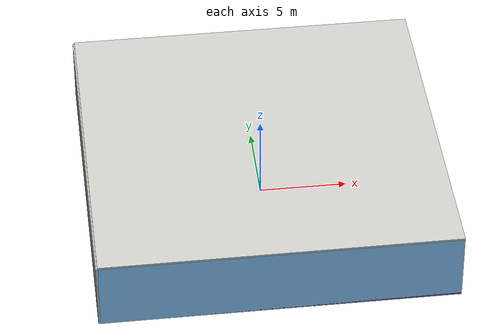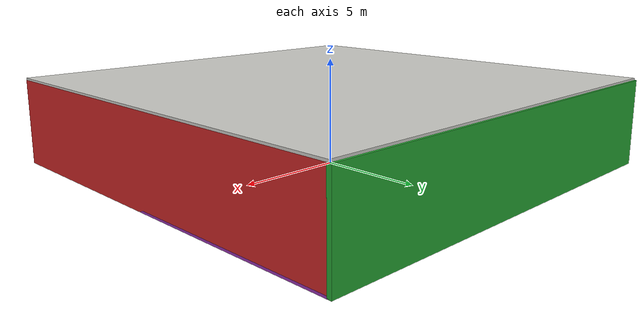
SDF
<sdf version="1.4">
 <world name="default">
  <physics type="ode">
   <max_step_size>0.001</max_step_size>
   <real_time_factor>1</real_time_factor>
   <real_time_update_rate>1000</real_time_update_rate>
   <gravity>0 0 -9.8</gravity>
  </physics>
  <scene><ambient>0.4 0.4 0.4 1</ambient><background>0.7 0.7 0.7 1</background><shadows>1</shadows></scene>
  <model name="Surrounding">
   <static>1</static>
   <link name="Ceiling">
    <collision name="Ceiling_Collision"><geometry><box><size>20 20 0.1</size></box></geometry></collision>
    <visual name="Ceiling_Visual">
     <geometry><box><size>20 20 0.1</size></box></geometry>
     <material>
      <script><uri>file://media/materials/scripts/gazebo.material</uri><name>Gazebo/CeilingTiled</name></script>
     </material>
    </visual>
    <pose>0 0 4.05 0 0 0</pose>
   </link>
   <link name="Wall_South">
    <collision name="Wall_South_Collision">
     <geometry><box><size>20 0 4</size></box></geometry>
     <pose>0 0 2 0 -0 0</pose>
    </collision>
    <visual name="Wall_South_Visual">
     <pose>0 0 2 0 -0 0</pose>
     <geometry><box><size>20 0 4</size></box></geometry>
     <material>
      <script><uri>file://media/materials/scripts/gazebo.material</uri><name>Gazebo/SkyBlue</name></script>
     </material>
    </visual>
    <velocity_decay><linear>0</linear><angular>0</angular></velocity_decay>
    <pose>0 -10 0 0 -0 0</pose>
   </link>
   <link name="Wall_East">
    <collision name="Wall_21_Collision">
     <geometry><box><size>20 0 4</size></box></geometry>
     <pose>0 0 2 0 -0 0</pose>
    </collision>
    <visual name="Wall_21_Visual">
     <pose>0 0 2 0 -0 0</pose>
     <geometry><box><size>20 0 4</size></box></geometry>
     <material>
      <script><uri>file://media/materials/scripts/gazebo.material</uri><name>Gazebo/Red</name></script>
     </material>
    </visual>
    <velocity_decay><linear>0</linear><angular>0</angular></velocity_decay>
    <pose>10 0 0 0 -0 1.5708</pose>
   </link>
   <link name="Wall_North">
    <collision name="Wall_22_Collision">
     <geometry><box><size>20 0.2 4</size></box></geometry>
     <pose>0 0 2 0 -0 0</pose>
    </collision>
    <visual name="Wall_22_Visual">
     <pose>0 0 2 0 -0 0</pose>
     <geometry><box><size>20 0.2 4</size></box></geometry>
     <material>
      <script><uri>file://media/materials/scripts/gazebo.material</uri><name>Gazebo/GreenGlow</name></script>
     </material>
    </visual>
    <velocity_decay><linear>0</linear><angular>0</angular></velocity_decay>
    <pose>0 10 0 0 -0 0</pose>
   </link>
   <link name="Wall_West">
    <collision name="Wall_23_Collision">
     <geometry><box><size>20 0.2 4</size></box></geometry>
     <pose>0 0 2 0 -0 0</pose>
    </collision>
    <visual name="Wall_23_Visual">
     <pose>0 0 2 0 -0 0</pose>
     <geometry><box><size>20 0.2 4</size></box></geometry>
     <material>
      <script><uri>file://media/materials/scripts/gazebo.material</uri><name>Gazebo/PioneerBody</name></script>
     </material>
    </visual>
    <velocity_decay><linear>0</linear><angular>0</angular></velocity_decay>
    <pose>-10 0 0 0 0 -1.5708</pose>
   </link>
   <link name="Ground_link">
    <collision name="collision">
     <pose>0 0 .05 0 -0 0</pose>
     <geometry><box><size>20 20 0.1</size></box></geometry>
    </collision>
    <visual name="visual">
     <pose>0 0 .05 0 -0 0</pose>
     <geometry><box><size>20 20 0.1</size></box></geometry>
     <material>
      <script><uri>file://media/materials/scripts/gazebo.material</uri><name>Gazebo/Purple</name></script>
     </material>
    </visual>
   </link>
   <static>1</static>
  </model>
  <spherical_coordinates>
   <surface_model>EARTH_WGS84</surface_model>
   <latitude_deg>0</latitude_deg>
   <longitude_deg>0</longitude_deg>
   <elevation>0</elevation>
   <heading_deg>0</heading_deg>
  </spherical_coordinates>
  <light name="lightball_0" type="diffuse">
   <diffuse>0.8 0.8 0.8 1</diffuse>
   <specular>0.2 0.2 0.2 1</specular>
   <attenuation>
    <range>100</range>
    <constant>0.7</constant>
    <linear>0.01</linear>
    <quadratic>0.001</quadratic>
   </attenuation>
   <direction>-0.5 0.1 -0.9</direction>
   <pose>-3.04308985475 6.94738133684 0.843251682585 0 0 0</pose>
  </light>
  <light name="lightball_1" type="diffuse">
   <diffuse>0.8 0.8 0.8 1</diffuse>
   <specular>0.2 0.2 0.2 1</specular>
   <attenuation>
    <range>100</range>
    <constant>0.7</constant>
    <linear>0.01</linear>
    <quadratic>0.001</quadratic>
   </attenuation>
   <direction>-0.5 0.1 -0.9</direction>
   <pose>-0.340824894971 -5.43389171849 1.88340764844 0 0 0</pose>
  </light>
  <light name="lightball_2" type="diffuse">
   <diffuse>0.8 0.8 0.8 1</diffuse>
   <specular>0.2 0.2 0.2 1</specular>
   <attenuation>
    <range>100</range>
    <constant>0.7</constant>
    <linear>0.01</linear>
    <quadratic>0.001</quadratic>
   </attenuation>
   <direction>-0.5 0.1 -0.9</direction>
   <pose>0.16532578641 -7.43476216302 2.25373883624 0 0 0</pose>
  </light>
  <light name="lightball_3" type="diffuse">
   <diffuse>0.8 0.8 0.8 1</diffuse>
   <specular>0.2 0.2 0.2 1</specular>
   <attenuation>
    <range>100</range>
    <constant>0.7</constant>
    <linear>0.01</linear>
    <quadratic>0.001</quadratic>
   </attenuation>
   <direction>-0.5 0.1 -0.9</direction>
   <pose>0.807495671011 7.33408541365 3.43603859578 0 0 0</pose>
  </light>
  <light name="lightball_4" type="diffuse">
   <diffuse>0.8 0.8 0.8 1</diffuse>
   <specular>0.2 0.2 0.2 1</specular>
   <attenuation>
    <range>100</range>
    <constant>0.7</constant>
    <linear>0.01</linear>
    <quadratic>0.001</quadratic>
   </attenuation>
   <direction>-0.5 0.1 -0.9</direction>
   <pose>5.17911573711 -6.8220467356 2.67805563195 0 0 0</pose>
  </light>
  <light name="lightball_5" type="diffuse">
   <diffuse>0.8 0.8 0.8 1</diffuse>
   <specular>0.2 0.2 0.2 1</specular>
   <attenuation>
    <range>100</range>
    <constant>0.7</constant>
    <linear>0.01</linear>
    <quadratic>0.001</quadratic>
   </attenuation>
   <direction>-0.5 0.1 -0.9</direction>
   <pose>-6.30265759654 -0.507491971907 2.46001385804 0 0 0</pose>
  </light>
  <light name="lightball_6" type="diffuse">
   <diffuse>0.8 0.8 0.8 1</diffuse>
   <specular>0.2 0.2 0.2 1</specular>
   <attenuation>
    <range>100</range>
    <constant>0.7</constant>
    <linear>0.01</linear>
    <quadratic>0.001</quadratic>
   </attenuation>
   <direction>-0.5 0.1 -0.9</direction>
   <pose>8.84312180181 0.912440034564 3.42107039075 0 0 0</pose>
  </light>
  <light name="lightball_7" type="diffuse">
   <diffuse>0.8 0.8 0.8 1</diffuse>
   <specular>0.2 0.2 0.2 1</specular>
   <attenuation>
    <range>100</range>
    <constant>0.7</constant>
    <linear>0.01</linear>
    <quadratic>0.001</quadratic>
   </attenuation>
   <direction>-0.5 0.1 -0.9</direction>
   <pose>-4.41588026845 -4.62152616467 1.18012162767 0 0 0</pose>
  </light>
  <light name="lightball_8" type="diffuse">
   <diffuse>0.8 0.8 0.8 1</diffuse>
   <specular>0.2 0.2 0.2 1</specular>
   <attenuation>
    <range>100</range>
    <constant>0.7</constant>
    <linear>0.01</linear>
    <quadratic>0.001</quadratic>
   </attenuation>
   <direction>-0.5 0.1 -0.9</direction>
   <pose>7.78400928073 -3.14380303892 2.06345716096 0 0 0</pose>
  </light>
  <include>
   <uri>model://textured_shapes</uri>
   <pose>-7.77888811105 -7.60473673814 0 0 0 1.3064061687</pose>
  </include>
  <include>
   <uri>model://textured_shapes</uri>
   <pose>-4.0174873665 -1.69101575113 0 0 0 0.995818156618</pose>
  </include>
  <include><uri>model://table</uri><pose>4.99333181965 -4.61107741931 0 0 0 0.0286680003644</pose></include>
  <include><uri>model://cabinet</uri><pose>8.12210584952 0.72793966944 0 0 0 2.32085234928</pose></include>
  <include>
   <uri>model://construction_cone</uri>
   <pose>7.76370184864 7.82848967616 0 0 0 2.70593955146</pose>
  </include>
 </world>
</sdf>

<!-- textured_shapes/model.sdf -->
<sdf version="1.6">
  <model name="textured_shapes">
    <pose>0 0 0.5 0 0 0</pose>
    <link name="box">
      <pose>0 -1.5 0 0 0 0</pose>
      <collision name="collision">
        <geometry>
          <box>
            <size>1 1 1</size>
          </box>
        </geometry>
      </collision>
      <visual name="visual">
        <geometry>
          <box>
            <size>1 1 1</size>
          </box>
        </geometry>
        <material>
          <script>
            <uri>model://../model_source/models/textured_shapes/materials/scripts</uri>
            <uri>model://../model_source/models/textured_shapes/materials/textures</uri>
            <name>TexturedShape/Squares</name>
          </script>
        </material>
      </visual>
    </link>
    <link name="sphere">
      <collision name="collision">
        <geometry>
          <sphere>
            <radius>0.5</radius>
          </sphere>
        </geometry>
      </collision>
      <visual name="visual">
        <geometry>
          <sphere>
            <radius>0.5</radius>
          </sphere>
        </geometry>
        <material>
          <script>
            <uri>model://../model_source/models/textured_shapes/materials/scripts</uri>
            <uri>model://../model_source/models/textured_shapes/materials/textures</uri>
            <name>TexturedShape/Squares</name>
          </script>
        </material>
      </visual>
    </link>
    <link name="cylinder">
      <pose>0 1.5 0 0 0 0</pose>
      <collision name="collision">
        <geometry>
          <cylinder>
            <radius>0.5</radius>
            <length>1</length>
          </cylinder>
        </geometry>
      </collision>
      <visual name="visual">
        <geometry>
          <cylinder>
            <radius>0.5</radius>
            <length>1</length>
          </cylinder>
        </geometry>
        <material>
          <script>
            <uri>model://../model_source/models/textured_shapes/materials/scripts</uri>
            <uri>model://../model_source/models/textured_shapes/materials/textures</uri>
            <name>TexturedShape/Squares</name>
          </script>
        </material>
      </visual>
    </link>
  </model>
</sdf>

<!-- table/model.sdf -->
<sdf version="1.5">
  <model name="table">
    <static>true</static>
    <link name="link">
      <collision name="surface">
        <pose>0 0 1.0 0 0 0</pose>
        <geometry>
          <box>
            <size>1.5 0.8 0.03</size>
          </box>
        </geometry>
        <surface>
          <friction>
            <ode>
              <mu>0.6</mu>
              <mu2>0.6</mu2>
            </ode>
          </friction>
        </surface>
      </collision>
      <visual name="visual1">
        <pose>0 0 1.0 0 0 0</pose>
        <geometry>
          <box>
            <size>1.5 0.8 0.03</size>
          </box>
        </geometry>
        <material>
          <script>
            <uri>model://media/materials/scripts/gazebo.material</uri>
            <name>Gazebo/Wood</name>
          </script>
        </material>
      </visual>
      <collision name="front_left_leg">
        <pose>0.68 0.38 0.5 0 0 0</pose>
        <geometry>
          <cylinder>
            <radius>0.02</radius>
            <length>1.0</length>
          </cylinder>
        </geometry>
      </collision>
      <visual name="front_left_leg">
        <pose>0.68 0.38 0.5 0 0 0</pose>
        <geometry>
          <cylinder>
            <radius>0.02</radius>
            <length>1.0</length>
          </cylinder>
        </geometry>
        <material>
          <script>
            <uri>model://media/materials/scripts/gazebo.material</uri>
            <name>Gazebo/Grey</name>
          </script>
        </material>
      </visual>
      <collision name="front_right_leg">
        <pose>0.68 -0.38 0.5 0 0 0</pose>
        <geometry>
          <cylinder>
            <radius>0.02</radius>
            <length>1.0</length>
          </cylinder>
        </geometry>
      </collision>
      <visual name="front_right_leg">
        <pose>0.68 -0.38 0.5 0 0 0</pose>
        <geometry>
          <cylinder>
            <radius>0.02</radius>
            <length>1.0</length>
          </cylinder>
        </geometry>
        <material>
          <script>
            <uri>model://media/materials/scripts/gazebo.material</uri>
            <name>Gazebo/Grey</name>
          </script>
        </material>
      </visual>
      <collision name="back_right_leg">
        <pose>-0.68 -0.38 0.5 0 0 0</pose>
        <geometry>
          <cylinder>
            <radius>0.02</radius>
            <length>1.0</length>
          </cylinder>
        </geometry>
      </collision>
      <visual name="back_right_leg">
        <pose>-0.68 -0.38 0.5 0 0 0</pose>
        <geometry>
          <cylinder>
            <radius>0.02</radius>
            <length>1.0</length>
          </cylinder>
        </geometry>
        <material>
          <script>
            <uri>model://media/materials/scripts/gazebo.material</uri>
            <name>Gazebo/Grey</name>
          </script>
        </material>
      </visual>
      <collision name="back_left_leg">
        <pose>-0.68 0.38 0.5 0 0 0</pose>
        <geometry>
          <cylinder>
            <radius>0.02</radius>
            <length>1.0</length>
          </cylinder>
        </geometry>
      </collision>
      <visual name="back_left_leg">
        <pose>-0.68 0.38 0.5 0 0 0</pose>
        <geometry>
          <cylinder>
            <radius>0.02</radius>
            <length>1.0</length>
          </cylinder>
        </geometry>
        <material>
          <script>
            <uri>model://media/materials/scripts/gazebo.material</uri>
            <name>Gazebo/Grey</name>
          </script>
        </material>
      </visual>
    </link>
  </model>
</sdf>

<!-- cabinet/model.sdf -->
<sdf version="1.5">
  <model name="cabinet">
    <static>true</static>
    <link name="cabinet_bottom_plate">
      <inertial>
        <pose>0 0 -1 0 0 0</pose>
        <inertia>
          <ixx>2.050000</ixx>
          <ixy>0</ixy>
          <ixz>0</ixz>
          <iyy>2.050000</iyy>
          <iyz>0</iyz>
          <izz>2.050000</izz>
        </inertia>
        <mass>25.000000</mass>
      </inertial>
      <collision name="cabinet_bottom_plate_geom">
        <pose>0 0 0.010000 0 0 0</pose>
        <geometry>
          <box>
            <size>0.450000 0.450000 0.020000</size>
          </box>
        </geometry>
      </collision>
      <visual name="cabinet_bottom_plate_geom_visual">
        <pose>0 0 0.010000 0 0 0</pose>
        <geometry>
          <box>
            <size>0.450000 0.450000 0.020000</size>
          </box>
        </geometry>
        <material>
          <script>
            <uri>model://media/materials/scripts/gazebo.material</uri>
            <name>Gazebo/Wood</name>
          </script>
        </material>
      </visual>
      <collision name="cabinet_bottom_plate_geom_cabinet_back_plate">
        <pose>0.235000 0 0.510000 0 0 0</pose>
        <geometry>
          <box>
            <size>0.020000 0.450000 1.020000</size>
          </box>
        </geometry>
      </collision>
      <visual name="cabinet_bottom_plate_geom_cabinet_back_plate_visual">
        <pose>0.235000 0 0.510000 0 0 0</pose>
        <geometry>
          <box>
            <size>0.020000 0.450000 1.020000</size>
          </box>
        </geometry>
        <material>
          <script>
            <uri>model://media/materials/scripts/gazebo.material</uri>
            <name>Gazebo/Wood</name>
          </script>
        </material>
      </visual>
      <collision name="cabinet_bottom_plate_geom_cabinet_left_plate">
        <pose>0 0.235000 0.510000 0 0 0</pose>
        <geometry>
          <box>
            <size>0.450000 0.020000 1.020000</size>
          </box>
        </geometry>
      </collision>
      <visual name="cabinet_bottom_plate_geom_cabinet_left_plate_visual">
        <pose>0 0.235000 0.510000 0 0 0</pose>
        <geometry>
          <box>
            <size>0.450000 0.020000 1.020000</size>
          </box>
        </geometry>
        <material>
          <script>
            <uri>model://media/materials/scripts/gazebo.material</uri>
            <name>Gazebo/Wood</name>
          </script>
        </material>
      </visual>
      <collision name="cabinet_bottom_plate_geom_cabinet_middle_plate">
        <pose>0 0 0.510000 0 0 0</pose>
        <geometry>
          <box>
            <size>0.450000 0.450000 0.020000</size>
          </box>
        </geometry>
      </collision>
      <visual name="cabinet_bottom_plate_geom_cabinet_middle_plate_visual">
        <pose>0 0 0.510000 0 0 0</pose>
        <geometry>
          <box>
            <size>0.450000 0.450000 0.020000</size>
          </box>
        </geometry>
        <material>
          <script>
            <uri>model://media/materials/scripts/gazebo.material</uri>
            <name>Gazebo/Wood</name>
          </script>
        </material>
      </visual>
      <collision name="cabinet_bottom_plate_geom_cabinet_right_plate">
        <pose>0 -0.235000 0.510000 0 0 0</pose>
        <geometry>
          <box>
            <size>0.450000 0.020000 1.020000</size>
          </box>
        </geometry>
      </collision>
      <visual name="cabinet_bottom_plate_geom_cabinet_right_plate_visual">
        <pose>0 -0.235000 0.510000 0 0 0</pose>
        <geometry>
          <box>
            <size>0.450000 0.020000 1.020000</size>
          </box>
        </geometry>
        <material>
          <script>
            <uri>model://media/materials/scripts/gazebo.material</uri>
            <name>Gazebo/Wood</name>
          </script>
        </material>
      </visual>
      <collision name="cabinet_bottom_plate_geom_cabinet_top_plate">
        <pose>0 0 1.010000 0 0 0</pose>
        <geometry>
          <box>
            <size>0.450000 0.450000 0.020000</size>
          </box>
        </geometry>
      </collision>
      <visual name="cabinet_bottom_plate_geom_cabinet_top_plate_visual">
        <pose>0 0 1.010000 0 0 0</pose>
        <geometry>
          <box>
            <size>0.450000 0.450000 0.020000</size>
          </box>
        </geometry>
        <material>
          <script>
            <uri>model://media/materials/scripts/gazebo.material</uri>
            <name>Gazebo/Wood</name>
          </script>
        </material>
      </visual>
    </link>
  </model>
</sdf>

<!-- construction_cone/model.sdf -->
<sdf version="1.5">
  <model name="Construction Cone">
    <link name="link">
      <collision name="collision">
        <geometry>
          <mesh>
            <scale>10 10 10</scale>
            <uri>file://isr-testbed/construction_cone/meshes/construction_cone.dae</uri>
          </mesh>
        </geometry>
      </collision>
      <visual name="visual">
        <geometry>
          <mesh>
            <scale>10 10 10</scale>
            <uri>file://isr-testbed/construction_cone/meshes/construction_cone.dae</uri>
          </mesh>
        </geometry>
      </visual>
    </link>
  </model>
</sdf>
